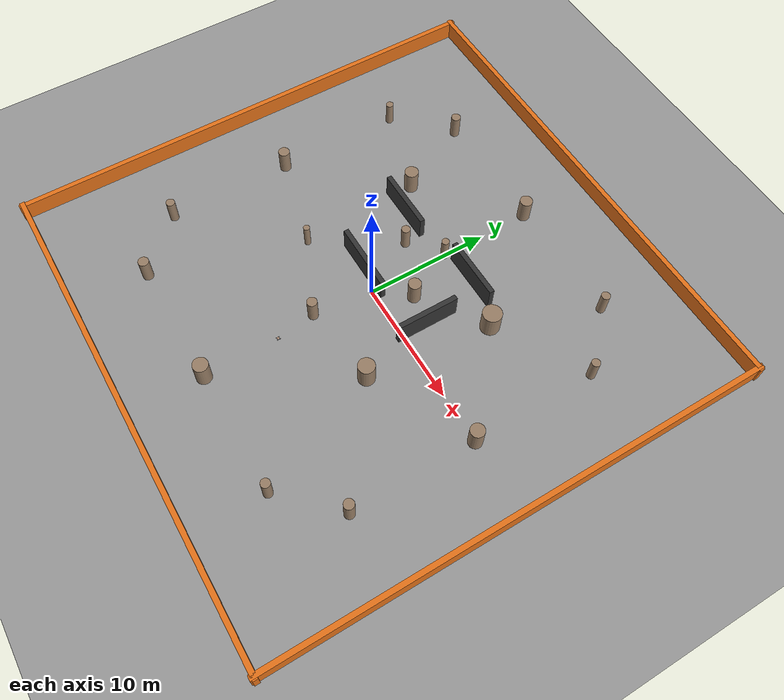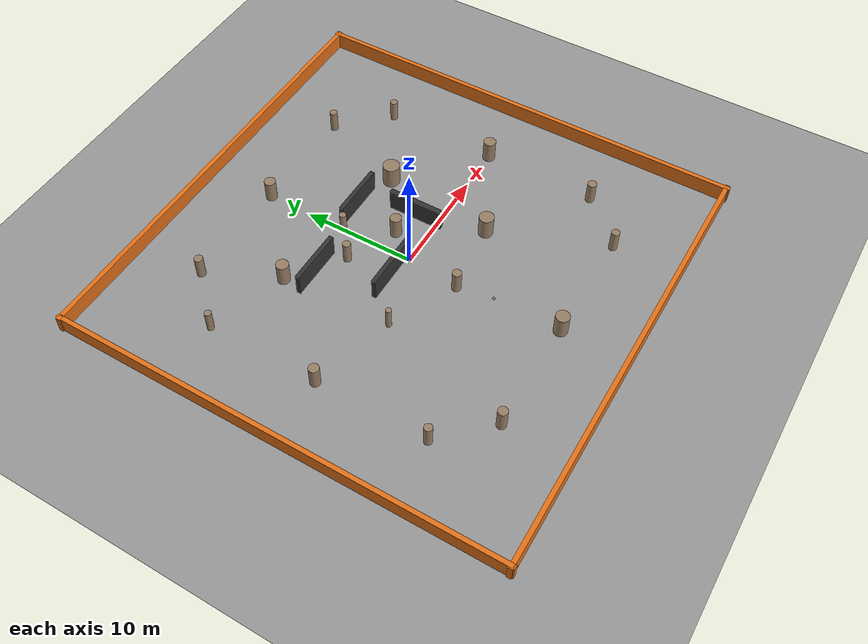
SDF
<?xml version="1.0" ?>
<sdf version="1.9">
  <!-- Keep world name as "playfield" to match existing model + bridge topic names. -->
  <world name="playfield">
    <physics name="1ms" type="ode">
      <max_step_size>0.001</max_step_size>
      <real_time_factor>1.0</real_time_factor>
      <real_time_update_rate>1000</real_time_update_rate>
    </physics>

    <plugin filename="gz-sim-physics-system" name="gz::sim::systems::Physics" />
    <plugin filename="gz-sim-user-commands-system" name="gz::sim::systems::UserCommands" />
    <!-- PX4 SITL sensors (IMU / barometer / GPS) require these system plugins, like PX4's default worlds. -->
    <plugin filename="gz-sim-contact-system" name="gz::sim::systems::Contact" />
    <plugin filename="gz-sim-imu-system" name="gz::sim::systems::Imu" />
    <plugin filename="gz-sim-air-pressure-system" name="gz::sim::systems::AirPressure" />
    <plugin filename="gz-sim-apply-link-wrench-system" name="gz::sim::systems::ApplyLinkWrench" />
    <plugin filename="gz-sim-navsat-system" name="gz::sim::systems::NavSat" />
    <plugin filename="gz-sim-sensors-system" name="gz::sim::systems::Sensors">
      <render_engine>ogre2</render_engine>
    </plugin>
    <plugin filename="gz-sim-scene-broadcaster-system" name="gz::sim::systems::SceneBroadcaster" />

    <light type="directional" name="sun">
      <cast_shadows>true</cast_shadows>
      <pose>0 0 10 0 0 0</pose>
      <diffuse>0.8 0.8 0.8 1</diffuse>
      <specular>0.2 0.2 0.2 1</specular>
      <attenuation>
        <range>1000</range>
        <constant>0.9</constant>
        <linear>0.01</linear>
        <quadratic>0.001</quadratic>
      </attenuation>
      <direction>-0.5 0.1 -0.9</direction>
    </light>

    <!-- Base field -->
    <model name="ground_plane">
      <static>true</static>
      <link name="link">
        <collision name="collision">
          <geometry>
            <plane>
              <normal>0 0 1</normal>
              <size>40 40</size>
            </plane>
          </geometry>
        </collision>
        <visual name="visual">
          <geometry>
            <plane>
              <normal>0 0 1</normal>
              <size>40 40</size>
            </plane>
          </geometry>
          <material>
            <ambient>0.6 0.6 0.6 1</ambient>
            <diffuse>0.6 0.6 0.6 1</diffuse>
            <specular>0.2 0.2 0.2 1</specular>
          </material>
        </visual>
      </link>
    </model>

    <!-- Perimeter walls (1.5 m) -->
    <model name="perimeter_wall_north">
      <static>true</static>
      <pose>0 20 0 0 0 0</pose>
      <link name="link">
        <collision name="collision">
          <pose>0 0 0.75 0 0 0</pose>
          <geometry>
            <box>
              <size>40.6 0.4 1.5</size>
            </box>
          </geometry>
        </collision>
        <visual name="visual">
          <pose>0 0 0.75 0 0 0</pose>
          <geometry>
            <box>
              <size>40.6 0.4 1.5</size>
            </box>
          </geometry>
          <material>
            <ambient>0.9 0.45 0.1 1</ambient>
            <diffuse>0.9 0.45 0.1 1</diffuse>
          </material>
        </visual>
      </link>
    </model>

    <model name="perimeter_wall_south">
      <static>true</static>
      <pose>0 -20 0 0 0 0</pose>
      <link name="link">
        <collision name="collision">
          <pose>0 0 0.75 0 0 0</pose>
          <geometry>
            <box>
              <size>40.6 0.4 1.5</size>
            </box>
          </geometry>
        </collision>
        <visual name="visual">
          <pose>0 0 0.75 0 0 0</pose>
          <geometry>
            <box>
              <size>40.6 0.4 1.5</size>
            </box>
          </geometry>
          <material>
            <ambient>0.9 0.45 0.1 1</ambient>
            <diffuse>0.9 0.45 0.1 1</diffuse>
          </material>
        </visual>
      </link>
    </model>

    <model name="perimeter_wall_east">
      <static>true</static>
      <pose>20 0 0 0 0 0</pose>
      <link name="link">
        <collision name="collision">
          <pose>0 0 0.75 0 0 0</pose>
          <geometry>
            <box>
              <size>0.4 40.6 1.5</size>
            </box>
          </geometry>
        </collision>
        <visual name="visual">
          <pose>0 0 0.75 0 0 0</pose>
          <geometry>
            <box>
              <size>0.4 40.6 1.5</size>
            </box>
          </geometry>
          <material>
            <ambient>0.9 0.45 0.1 1</ambient>
            <diffuse>0.9 0.45 0.1 1</diffuse>
          </material>
        </visual>
      </link>
    </model>

    <model name="perimeter_wall_west">
      <static>true</static>
      <pose>-20 0 0 0 0 0</pose>
      <link name="link">
        <collision name="collision">
          <pose>0 0 0.75 0 0 0</pose>
          <geometry>
            <box>
              <size>0.4 40.6 1.5</size>
            </box>
          </geometry>
        </collision>
        <visual name="visual">
          <pose>0 0 0.75 0 0 0</pose>
          <geometry>
            <box>
              <size>0.4 40.6 1.5</size>
            </box>
          </geometry>
          <material>
            <ambient>0.9 0.45 0.1 1</ambient>
            <diffuse>0.9 0.45 0.1 1</diffuse>
          </material>
        </visual>
      </link>
    </model>

    <!-- Sparse interior walls (2 m). Spaced to avoid tight traps. -->
    <model name="wall_a">
      <static>true</static>
      <pose>-2.0 0.5 0 0 0 0</pose>
      <link name="link">
        <collision name="collision">
          <pose>0 0 1 0 0 0</pose>
          <geometry>
            <box>
              <size>5.5 0.4 2</size>
            </box>
          </geometry>
        </collision>
        <visual name="visual">
          <pose>0 0 1 0 0 0</pose>
          <geometry>
            <box>
              <size>5.5 0.4 2</size>
            </box>
          </geometry>
          <material>
            <ambient>0.15 0.15 0.15 1</ambient>
            <diffuse>0.2 0.2 0.2 1</diffuse>
          </material>
        </visual>
      </link>
    </model>

    <model name="wall_b">
      <static>true</static>
      <pose>4.5 2.0 0 0 0 1.5708</pose>
      <link name="link">
        <collision name="collision">
          <pose>0 0 1 0 0 0</pose>
          <geometry>
            <box>
              <size>5.0 0.4 2</size>
            </box>
          </geometry>
        </collision>
        <visual name="visual">
          <pose>0 0 1 0 0 0</pose>
          <geometry>
            <box>
              <size>5.0 0.4 2</size>
            </box>
          </geometry>
          <material>
            <ambient>0.15 0.15 0.15 1</ambient>
            <diffuse>0.2 0.2 0.2 1</diffuse>
          </material>
        </visual>
      </link>
    </model>

    <model name="wall_c">
      <static>true</static>
      <pose>-5.0 6.0 0 0 0 0</pose>
      <link name="link">
        <collision name="collision">
          <pose>0 0 1 0 0 0</pose>
          <geometry>
            <box>
              <size>5.0 0.4 2</size>
            </box>
          </geometry>
        </collision>
        <visual name="visual">
          <pose>0 0 1 0 0 0</pose>
          <geometry>
            <box>
              <size>5.0 0.4 2</size>
            </box>
          </geometry>
          <material>
            <ambient>0.15 0.15 0.15 1</ambient>
            <diffuse>0.2 0.2 0.2 1</diffuse>
          </material>
        </visual>
      </link>
    </model>

    <model name="wall_d">
      <static>true</static>
      <pose>3.0 7.0 0 0 0 0</pose>
      <link name="link">
        <collision name="collision">
          <pose>0 0 1 0 0 0</pose>
          <geometry>
            <box>
              <size>5.0 0.4 2</size>
            </box>
          </geometry>
        </collision>
        <visual name="visual">
          <pose>0 0 1 0 0 0</pose>
          <geometry>
            <box>
              <size>5.0 0.4 2</size>
            </box>
          </geometry>
          <material>
            <ambient>0.15 0.15 0.15 1</ambient>
            <diffuse>0.2 0.2 0.2 1</diffuse>
          </material>
        </visual>
      </link>
    </model>

    <!-- Pillars: same height, different diameters. -->
    <model name="pillar_1">
      <static>true</static>
      <pose>-6.5 -2.0 0 0 0 0</pose>
      <link name="link">
        <collision name="collision">
          <pose>0 0 1 0 0 0</pose>
          <geometry>
            <cylinder>
              <radius>0.25</radius>
              <length>2</length>
            </cylinder>
          </geometry>
        </collision>
        <visual name="visual">
          <pose>0 0 1 0 0 0</pose>
          <geometry>
            <cylinder>
              <radius>0.25</radius>
              <length>2</length>
            </cylinder>
          </geometry>
          <material>
            <ambient>0.5 0.4 0.3 1</ambient>
            <diffuse>0.6 0.5 0.4 1</diffuse>
          </material>
        </visual>
      </link>
    </model>

    <model name="pillar_2">
      <static>true</static>
      <pose>-2.5 4.5 0 0 0 0</pose>
      <link name="link">
        <collision name="collision">
          <pose>0 0 1 0 0 0</pose>
          <geometry>
            <cylinder>
              <radius>0.35</radius>
              <length>2</length>
            </cylinder>
          </geometry>
        </collision>
        <visual name="visual">
          <pose>0 0 1 0 0 0</pose>
          <geometry>
            <cylinder>
              <radius>0.35</radius>
              <length>2</length>
            </cylinder>
          </geometry>
          <material>
            <ambient>0.5 0.4 0.3 1</ambient>
            <diffuse>0.6 0.5 0.4 1</diffuse>
          </material>
        </visual>
      </link>
    </model>

    <model name="pillar_3">
      <static>true</static>
      <pose>2.0 2.5 0 0 0 0</pose>
      <link name="link">
        <collision name="collision">
          <pose>0 0 1 0 0 0</pose>
          <geometry>
            <cylinder>
              <radius>0.50</radius>
              <length>2</length>
            </cylinder>
          </geometry>
        </collision>
        <visual name="visual">
          <pose>0 0 1 0 0 0</pose>
          <geometry>
            <cylinder>
              <radius>0.50</radius>
              <length>2</length>
            </cylinder>
          </geometry>
          <material>
            <ambient>0.5 0.4 0.3 1</ambient>
            <diffuse>0.6 0.5 0.4 1</diffuse>
          </material>
        </visual>
      </link>
    </model>

    <model name="pillar_4">
      <static>true</static>
      <pose>6.0 -4.0 0 0 0 0</pose>
      <link name="link">
        <collision name="collision">
          <pose>0 0 1 0 0 0</pose>
          <geometry>
            <cylinder>
              <radius>0.65</radius>
              <length>2</length>
            </cylinder>
          </geometry>
        </collision>
        <visual name="visual">
          <pose>0 0 1 0 0 0</pose>
          <geometry>
            <cylinder>
              <radius>0.65</radius>
              <length>2</length>
            </cylinder>
          </geometry>
          <material>
            <ambient>0.5 0.4 0.3 1</ambient>
            <diffuse>0.6 0.5 0.4 1</diffuse>
          </material>
        </visual>
      </link>
    </model>

    <model name="pillar_5">
      <static>true</static>
      <pose>0.0 6.5 0 0 0 0</pose>
      <link name="link">
        <collision name="collision">
          <pose>0 0 1 0 0 0</pose>
          <geometry>
            <cylinder>
              <radius>0.30</radius>
              <length>2</length>
            </cylinder>
          </geometry>
        </collision>
        <visual name="visual">
          <pose>0 0 1 0 0 0</pose>
          <geometry>
            <cylinder>
              <radius>0.30</radius>
              <length>2</length>
            </cylinder>
          </geometry>
          <material>
            <ambient>0.5 0.4 0.3 1</ambient>
            <diffuse>0.6 0.5 0.4 1</diffuse>
          </material>
        </visual>
      </link>
    </model>

    <model name="pillar_6">
      <static>true</static>
      <pose>-7.0 7.8 0 0 0 0</pose>
      <link name="link">
        <collision name="collision">
          <pose>0 0 1 0 0 0</pose>
          <geometry>
            <cylinder>
              <radius>0.55</radius>
              <length>2</length>
            </cylinder>
          </geometry>
        </collision>
        <visual name="visual">
          <pose>0 0 1 0 0 0</pose>
          <geometry>
            <cylinder>
              <radius>0.55</radius>
              <length>2</length>
            </cylinder>
          </geometry>
          <material>
            <ambient>0.5 0.4 0.3 1</ambient>
            <diffuse>0.6 0.5 0.4 1</diffuse>
          </material>
        </visual>
      </link>
    </model>

    <model name="pillar_7">
      <static>true</static>
      <pose>-0.5 -4.8 0 0 0 0</pose>
      <link name="link">
        <collision name="collision">
          <pose>0 0 1 0 0 0</pose>
          <geometry>
            <cylinder>
              <radius>0.40</radius>
              <length>2</length>
            </cylinder>
          </geometry>
        </collision>
        <visual name="visual">
          <pose>0 0 1 0 0 0</pose>
          <geometry>
            <cylinder>
              <radius>0.40</radius>
              <length>2</length>
            </cylinder>
          </geometry>
          <material>
            <ambient>0.5 0.4 0.3 1</ambient>
            <diffuse>0.6 0.5 0.4 1</diffuse>
          </material>
        </visual>
      </link>
    </model>

    <model name="pillar_8">
      <static>true</static>
      <pose>7.0 6.0 0 0 0 0</pose>
      <link name="link">
        <collision name="collision">
          <pose>0 0 1 0 0 0</pose>
          <geometry>
            <cylinder>
              <radius>0.75</radius>
              <length>2</length>
            </cylinder>
          </geometry>
        </collision>
        <visual name="visual">
          <pose>0 0 1 0 0 0</pose>
          <geometry>
            <cylinder>
              <radius>0.75</radius>
              <length>2</length>
            </cylinder>
          </geometry>
          <material>
            <ambient>0.5 0.4 0.3 1</ambient>
            <diffuse>0.6 0.5 0.4 1</diffuse>
          </material>
        </visual>
      </link>
    </model>

    <!-- Outer area landmarks (help ToF SLAM / exploration in the larger 40×40 arena). -->
    <model name="outer_pillar_1">
      <static>true</static>
      <pose>-14.0 -10.0 0 0 0 0</pose>
      <link name="link">
        <collision name="collision">
          <pose>0 0 1 0 0 0</pose>
          <geometry>
            <cylinder>
              <radius>0.35</radius>
              <length>2</length>
            </cylinder>
          </geometry>
        </collision>
        <visual name="visual">
          <pose>0 0 1 0 0 0</pose>
          <geometry>
            <cylinder>
              <radius>0.35</radius>
              <length>2</length>
            </cylinder>
          </geometry>
          <material>
            <ambient>0.5 0.4 0.3 1</ambient>
            <diffuse>0.6 0.5 0.4 1</diffuse>
          </material>
        </visual>
      </link>
    </model>

    <model name="outer_pillar_2">
      <static>true</static>
      <pose>-14.0 0.0 0 0 0 0</pose>
      <link name="link">
        <collision name="collision">
          <pose>0 0 1 0 0 0</pose>
          <geometry>
            <cylinder>
              <radius>0.45</radius>
              <length>2</length>
            </cylinder>
          </geometry>
        </collision>
        <visual name="visual">
          <pose>0 0 1 0 0 0</pose>
          <geometry>
            <cylinder>
              <radius>0.45</radius>
              <length>2</length>
            </cylinder>
          </geometry>
          <material>
            <ambient>0.5 0.4 0.3 1</ambient>
            <diffuse>0.6 0.5 0.4 1</diffuse>
          </material>
        </visual>
      </link>
    </model>

    <model name="outer_pillar_3">
      <static>true</static>
      <pose>-14.0 10.0 0 0 0 0</pose>
      <link name="link">
        <collision name="collision">
          <pose>0 0 1 0 0 0</pose>
          <geometry>
            <cylinder>
              <radius>0.30</radius>
              <length>2</length>
            </cylinder>
          </geometry>
        </collision>
        <visual name="visual">
          <pose>0 0 1 0 0 0</pose>
          <geometry>
            <cylinder>
              <radius>0.30</radius>
              <length>2</length>
            </cylinder>
          </geometry>
          <material>
            <ambient>0.5 0.4 0.3 1</ambient>
            <diffuse>0.6 0.5 0.4 1</diffuse>
          </material>
        </visual>
      </link>
    </model>

    <model name="outer_pillar_4">
      <static>true</static>
      <pose>14.0 -10.0 0 0 0 0</pose>
      <link name="link">
        <collision name="collision">
          <pose>0 0 1 0 0 0</pose>
          <geometry>
            <cylinder>
              <radius>0.40</radius>
              <length>2</length>
            </cylinder>
          </geometry>
        </collision>
        <visual name="visual">
          <pose>0 0 1 0 0 0</pose>
          <geometry>
            <cylinder>
              <radius>0.40</radius>
              <length>2</length>
            </cylinder>
          </geometry>
          <material>
            <ambient>0.5 0.4 0.3 1</ambient>
            <diffuse>0.6 0.5 0.4 1</diffuse>
          </material>
        </visual>
      </link>
    </model>

    <model name="outer_pillar_5">
      <static>true</static>
      <pose>14.0 0.0 0 0 0 0</pose>
      <link name="link">
        <collision name="collision">
          <pose>0 0 1 0 0 0</pose>
          <geometry>
            <cylinder>
              <radius>0.55</radius>
              <length>2</length>
            </cylinder>
          </geometry>
        </collision>
        <visual name="visual">
          <pose>0 0 1 0 0 0</pose>
          <geometry>
            <cylinder>
              <radius>0.55</radius>
              <length>2</length>
            </cylinder>
          </geometry>
          <material>
            <ambient>0.5 0.4 0.3 1</ambient>
            <diffuse>0.6 0.5 0.4 1</diffuse>
          </material>
        </visual>
      </link>
    </model>

    <model name="outer_pillar_6">
      <static>true</static>
      <pose>14.0 10.0 0 0 0 0</pose>
      <link name="link">
        <collision name="collision">
          <pose>0 0 1 0 0 0</pose>
          <geometry>
            <cylinder>
              <radius>0.33</radius>
              <length>2</length>
            </cylinder>
          </geometry>
        </collision>
        <visual name="visual">
          <pose>0 0 1 0 0 0</pose>
          <geometry>
            <cylinder>
              <radius>0.33</radius>
              <length>2</length>
            </cylinder>
          </geometry>
          <material>
            <ambient>0.5 0.4 0.3 1</ambient>
            <diffuse>0.6 0.5 0.4 1</diffuse>
          </material>
        </visual>
      </link>
    </model>

    <model name="outer_pillar_7">
      <static>true</static>
      <pose>-10.0 14.0 0 0 0 0</pose>
      <link name="link">
        <collision name="collision">
          <pose>0 0 1 0 0 0</pose>
          <geometry>
            <cylinder>
              <radius>0.38</radius>
              <length>2</length>
            </cylinder>
          </geometry>
        </collision>
        <visual name="visual">
          <pose>0 0 1 0 0 0</pose>
          <geometry>
            <cylinder>
              <radius>0.38</radius>
              <length>2</length>
            </cylinder>
          </geometry>
          <material>
            <ambient>0.5 0.4 0.3 1</ambient>
            <diffuse>0.6 0.5 0.4 1</diffuse>
          </material>
        </visual>
      </link>
    </model>

    <model name="outer_pillar_8">
      <static>true</static>
      <pose>0.0 14.0 0 0 0 0</pose>
      <link name="link">
        <collision name="collision">
          <pose>0 0 1 0 0 0</pose>
          <geometry>
            <cylinder>
              <radius>0.50</radius>
              <length>2</length>
            </cylinder>
          </geometry>
        </collision>
        <visual name="visual">
          <pose>0 0 1 0 0 0</pose>
          <geometry>
            <cylinder>
              <radius>0.50</radius>
              <length>2</length>
            </cylinder>
          </geometry>
          <material>
            <ambient>0.5 0.4 0.3 1</ambient>
            <diffuse>0.6 0.5 0.4 1</diffuse>
          </material>
        </visual>
      </link>
    </model>

    <model name="outer_pillar_9">
      <static>true</static>
      <pose>10.0 14.0 0 0 0 0</pose>
      <link name="link">
        <collision name="collision">
          <pose>0 0 1 0 0 0</pose>
          <geometry>
            <cylinder>
              <radius>0.34</radius>
              <length>2</length>
            </cylinder>
          </geometry>
        </collision>
        <visual name="visual">
          <pose>0 0 1 0 0 0</pose>
          <geometry>
            <cylinder>
              <radius>0.34</radius>
              <length>2</length>
            </cylinder>
          </geometry>
          <material>
            <ambient>0.5 0.4 0.3 1</ambient>
            <diffuse>0.6 0.5 0.4 1</diffuse>
          </material>
        </visual>
      </link>
    </model>

    <model name="outer_pillar_10">
      <static>true</static>
      <pose>-10.0 -14.0 0 0 0 0</pose>
      <link name="link">
        <collision name="collision">
          <pose>0 0 1 0 0 0</pose>
          <geometry>
            <cylinder>
              <radius>0.42</radius>
              <length>2</length>
            </cylinder>
          </geometry>
        </collision>
        <visual name="visual">
          <pose>0 0 1 0 0 0</pose>
          <geometry>
            <cylinder>
              <radius>0.42</radius>
              <length>2</length>
            </cylinder>
          </geometry>
          <material>
            <ambient>0.5 0.4 0.3 1</ambient>
            <diffuse>0.6 0.5 0.4 1</diffuse>
          </material>
        </visual>
      </link>
    </model>

    <model name="outer_pillar_11">
      <static>true</static>
      <pose>0.0 -14.0 0 0 0 0</pose>
      <link name="link">
        <collision name="collision">
          <pose>0 0 1 0 0 0</pose>
          <geometry>
            <cylinder>
              <radius>0.60</radius>
              <length>2</length>
            </cylinder>
          </geometry>
        </collision>
        <visual name="visual">
          <pose>0 0 1 0 0 0</pose>
          <geometry>
            <cylinder>
              <radius>0.60</radius>
              <length>2</length>
            </cylinder>
          </geometry>
          <material>
            <ambient>0.5 0.4 0.3 1</ambient>
            <diffuse>0.6 0.5 0.4 1</diffuse>
          </material>
        </visual>
      </link>
    </model>

    <model name="outer_pillar_12">
      <static>true</static>
      <pose>10.0 -14.0 0 0 0 0</pose>
      <link name="link">
        <collision name="collision">
          <pose>0 0 1 0 0 0</pose>
          <geometry>
            <cylinder>
              <radius>0.36</radius>
              <length>2</length>
            </cylinder>
          </geometry>
        </collision>
        <visual name="visual">
          <pose>0 0 1 0 0 0</pose>
          <geometry>
            <cylinder>
              <radius>0.36</radius>
              <length>2</length>
            </cylinder>
          </geometry>
          <material>
            <ambient>0.5 0.4 0.3 1</ambient>
            <diffuse>0.6 0.5 0.4 1</diffuse>
          </material>
        </visual>
      </link>
    </model>

    <!-- Robot spawn -->
    <include>
      <uri>model://rex_quadcopter</uri>
      <name>robot</name>
      <pose>0 -8 0.05 0 0 0</pose>
    </include>
  </world>
</sdf>

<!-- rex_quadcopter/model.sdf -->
<sdf version="1.9">
  <model name="rex_quadcopter">
    <static>false</static>

    <!-- Main body link -->
    <link name="base_link">
      <pose>0 0 0.15 0 0 0</pose>

      <inertial>
        <mass>0.3</mass>
        <inertia>
          <ixx>0.001</ixx>
          <iyy>0.001</iyy>
          <izz>0.002</izz>
          <ixy>0</ixy>
          <ixz>0</ixz>
          <iyz>0</iyz>
        </inertia>
      </inertial>

      <!-- Disable gravity on the link (re-enable when you add rotors) -->
      <gravity>false</gravity>

      <!-- Simple collision box -->
      <collision name="body_collision">
        <geometry>
          <box>
            <size>0.15 0.15 0.05</size>
          </box>
        </geometry>
      </collision>

      <!-- ===================== FRAME (dual plates) ===================== -->
      <visual name="frame_top">
        <pose>0 0 0.020 0 0 0</pose>
        <geometry><box><size>0.18 0.18 0.004</size></box></geometry>
        <material>
          <ambient>0.65 0.55 0.45 1</ambient>
          <diffuse>0.75 0.60 0.50 1</diffuse>
          <specular>0.2 0.2 0.2 1</specular>
        </material>
      </visual>

      <visual name="frame_bottom">
        <pose>0 0 -0.020 0 0 0</pose>
        <geometry><box><size>0.18 0.18 0.004</size></box></geometry>
        <material>
          <ambient>0.65 0.55 0.45 1</ambient>
          <diffuse>0.75 0.60 0.50 1</diffuse>
          <specular>0.2 0.2 0.2 1</specular>
        </material>
      </visual>

      <!-- ===================== GOLD STANDOFFS ===================== -->
      <visual name="standoff_fr">
        <pose> 0.07  0.07 0 0 0 0</pose>
        <geometry><cylinder><radius>0.004</radius><length>0.040</length></cylinder></geometry>
        <material><ambient>0.9 0.8 0.3 1</ambient><diffuse>1.0 0.85 0.35 1</diffuse></material>
      </visual>
      <visual name="standoff_fl">
        <pose>-0.07  0.07 0 0 0 0</pose>
        <geometry><cylinder><radius>0.004</radius><length>0.040</length></cylinder></geometry>
        <material><ambient>0.9 0.8 0.3 1</ambient><diffuse>1.0 0.85 0.35 1</diffuse></material>
      </visual>
      <visual name="standoff_br">
        <pose> 0.07 -0.07 0 0 0 0</pose>
        <geometry><cylinder><radius>0.004</radius><length>0.040</length></cylinder></geometry>
        <material><ambient>0.9 0.8 0.3 1</ambient><diffuse>1.0 0.85 0.35 1</diffuse></material>
      </visual>
      <visual name="standoff_bl">
        <pose>-0.07 -0.07 0 0 0 0</pose>
        <geometry><cylinder><radius>0.004</radius><length>0.040</length></cylinder></geometry>
      </visual>

      <!-- ===================== THIN GOLD LEGS / PINS ===================== -->
      <visual name="leg_fr">
        <pose> 0.055  0.055 -0.040 0 0 0</pose>
        <geometry><cylinder><radius>0.0025</radius><length>0.030</length></cylinder></geometry>
      </visual>
      <visual name="leg_fl">
        <pose>-0.055  0.055 -0.040 0 0 0</pose>
        <geometry><cylinder><radius>0.0025</radius><length>0.030</length></cylinder></geometry>
      </visual>
      <visual name="leg_br">
        <pose> 0.055 -0.055 -0.040 0 0 0</pose>
        <geometry><cylinder><radius>0.0025</radius><length>0.030</length></cylinder></geometry>
      </visual>
      <visual name="leg_bl">
        <pose>-0.055 -0.055 -0.040 0 0 0</pose>
        <geometry><cylinder><radius>0.0025</radius><length>0.030</length></cylinder></geometry>
      </visual>

      <!-- ===================== MOTOR CANS ===================== -->
      <visual name="motor_fr">
        <pose> 0.095  0.095 0.012 0 0 0</pose>
        <geometry><cylinder><radius>0.018</radius><length>0.018</length></cylinder></geometry>
      </visual>
      <visual name="motor_fl">
        <pose>-0.095  0.095 0.012 0 0 0</pose>
        <geometry><cylinder><radius>0.018</radius><length>0.018</length></cylinder></geometry>
      </visual>
      <visual name="motor_br">
        <pose> 0.095 -0.095 0.012 0 0 0</pose>
        <geometry><cylinder><radius>0.018</radius><length>0.018</length></cylinder></geometry>
      </visual>
      <visual name="motor_bl">
        <pose>-0.095 -0.095 0.012 0 0 0</pose>
        <geometry><cylinder><radius>0.018</radius><length>0.018</length></cylinder></geometry>
      </visual>

      <!-- ===================== DARK PROPS ABOVE MOTORS ===================== -->
      <visual name="prop_fr">
        <pose> 0.095  0.095 0.022 0 0 0</pose>
        <geometry><cylinder><radius>0.050</radius><length>0.0015</length></cylinder></geometry>
      </visual>
      <visual name="prop_fl">
        <pose>-0.095  0.095 0.022 0 0 0</pose>
        <geometry><cylinder><radius>0.050</radius><length>0.0015</length></cylinder></geometry>
      </visual>
      <visual name="prop_br">
        <pose> 0.095 -0.095 0.022 0 0 0</pose>
        <geometry><cylinder><radius>0.050</radius><length>0.0015</length></cylinder></geometry>
      </visual>
      <visual name="prop_bl">
        <pose>-0.095 -0.095 0.022 0 0 0</pose>
        <geometry><cylinder><radius>0.050</radius><length>0.0015</length></cylinder></geometry>
      </visual>

      <!-- ===================== BLUE STATUS LED ===================== -->
      <visual name="status_led">
        <pose>0 0 -0.018 0 0 0</pose>
        <geometry><sphere><radius>0.006</radius></sphere></geometry>
      </visual>

      <!-- ===================== 8 RAY-BASED RANGE SENSORS ===================== -->
      <!-- Simple laser beams publishing LaserScan messages for debugging. -->
      <sensor name="tof_front" type="gpu_lidar">
        <pose>0.12 0 0 0 0 0</pose>
        <lidar>
          <scan>
            <horizontal>
              <samples>5</samples>
              <resolution>1</resolution>
              <min_angle>-0.5235987756</min_angle>
              <max_angle>0.5235987756</max_angle>
            </horizontal>
          </scan>
          <range>
            <min>0.05</min>
            <max>6.0</max>
            <resolution>0.001</resolution>
          </range>
        </lidar>
        <always_on>true</always_on>
        <update_rate>20</update_rate>
        <visualize>true</visualize>
        <topic>/world/playfield/model/robot/link/base_link/sensor/tof_front/scan</topic>
      </sensor>

      <sensor name="tof_front_right" type="gpu_lidar">
        <pose>0.085 0.085 0 0 0 0.7853981634</pose>
        <lidar>
          <scan>
            <horizontal>
              <samples>5</samples>
              <resolution>1</resolution>
              <min_angle>-0.5235987756</min_angle>
              <max_angle>0.5235987756</max_angle>
            </horizontal>
          </scan>
          <range>
            <min>0.05</min>
            <max>6.0</max>
            <resolution>0.001</resolution>
          </range>
        </lidar>
        <always_on>true</always_on>
        <update_rate>20</update_rate>
        <visualize>true</visualize>
        <topic>/world/playfield/model/robot/link/base_link/sensor/tof_front_right/scan</topic>
      </sensor>

      <sensor name="tof_right" type="gpu_lidar">
        <pose>0 0.12 0 0 0 1.5707963268</pose>
        <lidar>
          <scan>
            <horizontal>
              <samples>5</samples>
              <resolution>1</resolution>
              <min_angle>-0.5235987756</min_angle>
              <max_angle>0.5235987756</max_angle>
            </horizontal>
          </scan>
          <range>
            <min>0.05</min>
            <max>6.0</max>
            <resolution>0.001</resolution>
          </range>
        </lidar>
        <always_on>true</always_on>
        <update_rate>20</update_rate>
        <visualize>true</visualize>
        <topic>/world/playfield/model/robot/link/base_link/sensor/tof_right/scan</topic>
      </sensor>

      <sensor name="tof_back_right" type="gpu_lidar">
        <pose>-0.085 0.085 0 0 0 2.3561944902</pose>
        <lidar>
          <scan>
            <horizontal>
              <samples>5</samples>
              <resolution>1</resolution>
              <min_angle>-0.5235987756</min_angle>
              <max_angle>0.5235987756</max_angle>
            </horizontal>
          </scan>
          <range>
            <min>0.05</min>
            <max>6.0</max>
            <resolution>0.001</resolution>
          </range>
        </lidar>
        <always_on>true</always_on>
        <update_rate>20</update_rate>
        <visualize>true</visualize>
        <topic>/world/playfield/model/robot/link/base_link/sensor/tof_back_right/scan</topic>
      </sensor>

      <sensor name="tof_back" type="gpu_lidar">
        <pose>-0.12 0 0 0 0 3.1415926536</pose>
        <lidar>
          <scan>
            <horizontal>
              <samples>5</samples>
              <resolution>1</resolution>
              <min_angle>-0.5235987756</min_angle>
              <max_angle>0.5235987756</max_angle>
            </horizontal>
          </scan>
          <range>
            <min>0.05</min>
            <max>6.0</max>
            <resolution>0.001</resolution>
          </range>
        </lidar>
        <always_on>true</always_on>
        <update_rate>20</update_rate>
        <visualize>true</visualize>
        <topic>/world/playfield/model/robot/link/base_link/sensor/tof_back/scan</topic>
      </sensor>

      <sensor name="tof_back_left" type="gpu_lidar">
        <pose>-0.085 -0.085 0 0 0 -2.3561944902</pose>
        <lidar>
          <scan>
            <horizontal>
              <samples>5</samples>
              <resolution>1</resolution>
              <min_angle>-0.5235987756</min_angle>
              <max_angle>0.5235987756</max_angle>
            </horizontal>
          </scan>
          <range>
            <min>0.05</min>
            <max>6.0</max>
            <resolution>0.001</resolution>
          </range>
        </lidar>
        <always_on>true</always_on>
        <update_rate>20</update_rate>
        <visualize>true</visualize>
        <topic>/world/playfield/model/robot/link/base_link/sensor/tof_back_left/scan</topic>
      </sensor>

      <sensor name="tof_left" type="gpu_lidar">
        <pose>0 -0.12 0 0 0 -1.5707963268</pose>
        <lidar>
          <scan>
            <horizontal>
              <samples>5</samples>
              <resolution>1</resolution>
              <min_angle>-0.5235987756</min_angle>
              <max_angle>0.5235987756</max_angle>
            </horizontal>
          </scan>
          <range>
            <min>0.05</min>
            <max>6.0</max>
            <resolution>0.001</resolution>
          </range>
        </lidar>
        <always_on>true</always_on>
        <update_rate>20</update_rate>
        <visualize>true</visualize>
        <topic>/world/playfield/model/robot/link/base_link/sensor/tof_left/scan</topic>
      </sensor>

      <sensor name="tof_front_left" type="gpu_lidar">
        <pose>0.085 -0.085 0 0 0 -0.7853981634</pose>
        <lidar>
          <scan>
            <horizontal>
              <samples>5</samples>
              <resolution>1</resolution>
              <min_angle>-0.5235987756</min_angle>
              <max_angle>0.5235987756</max_angle>
            </horizontal>
          </scan>
          <range>
            <min>0.05</min>
            <max>6.0</max>
            <resolution>0.001</resolution>
          </range>
        </lidar>
        <always_on>true</always_on>
        <update_rate>20</update_rate>
        <visualize>true</visualize>
        <topic>/world/playfield/model/robot/link/base_link/sensor/tof_front_left/scan</topic>
      </sensor>

    </link>

    <!-- Velocity control and odometry plugins -->
    <plugin name="gz::sim::systems::VelocityControl" filename="gz-sim-velocity-control-system">
      <topic>/cmd_vel</topic>
      <use_world_frame>false</use_world_frame>
      <max_linear_velocity>3</max_linear_velocity>
      <max_angular_velocity>2</max_angular_velocity>
    </plugin>

    <plugin name="gz::sim::systems::OdometryPublisher" filename="gz-sim-odometry-publisher-system">
      <topic>/odom</topic>
      <frame_id>robot/odom</frame_id>
      <child_frame_id>robot/base_link</child_frame_id>
      <publish_tf>true</publish_tf>
    </plugin>

  </model>
</sdf>
